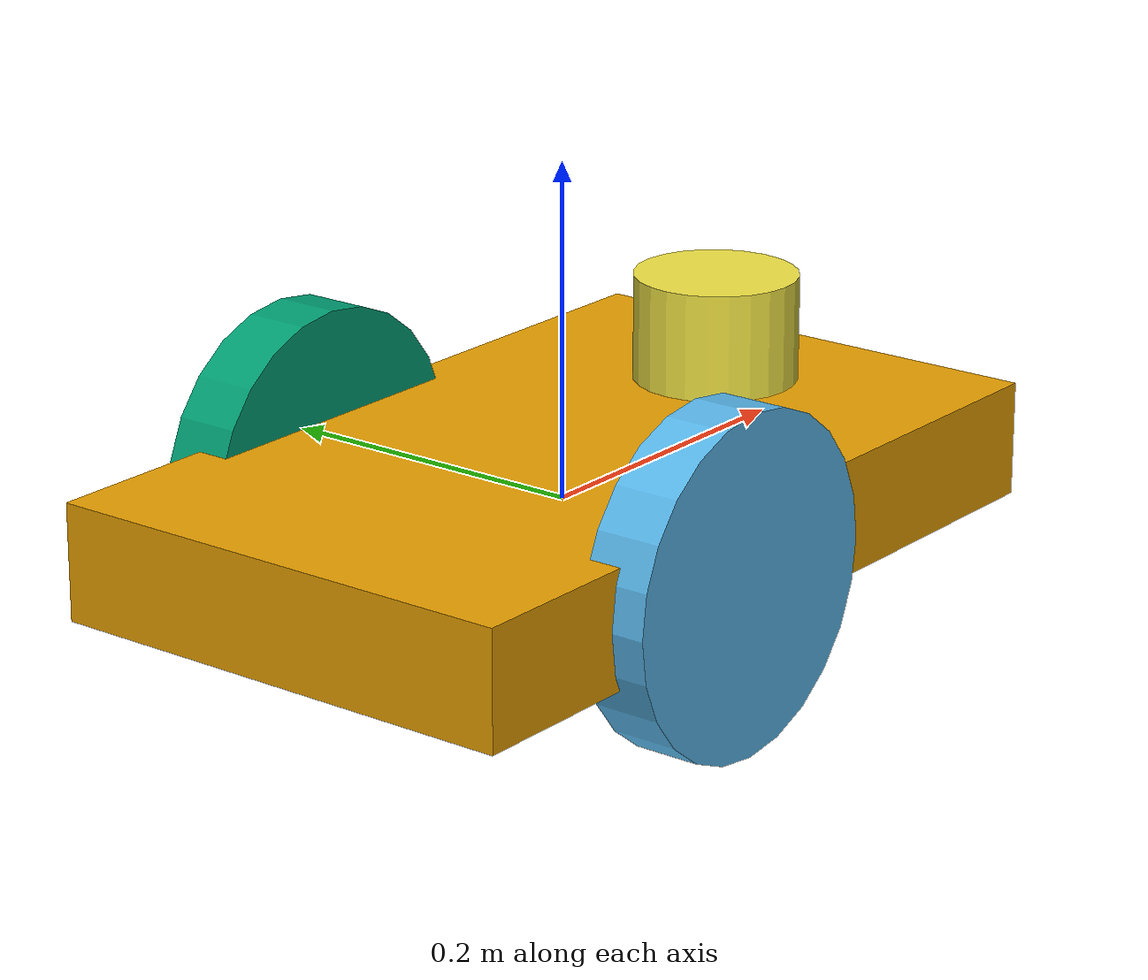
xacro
<?xml version="1.0" ?>
<robot name="sample_robot" xmlns:xacro="http://www.ros.org/wiki/xacro">

  <xacro:include filename="$(find gazebo_example)/urdf/sample_robot.gazebo"/>

  <!-- Robot wheel power source via ROS topic-->
  <gazebo>
    <plugin filename="libgazebo_ros_diff_drive.so" name="differential_drive_controller">
      <legacyMode>true</legacyMode>
      <alwaysOn>true</alwaysOn>
      <updateRate>20</updateRate>
      <leftJoint>joint_left_wheel</leftJoint>
      <rightJoint>joint_right_wheel</rightJoint>
      <wheelSeparation>0.3</wheelSeparation>
      <wheelDiameter>0.2</wheelDiameter>
      <torque>0.1</torque>
      <commandTopic>cmd_vel</commandTopic>
      <odometryTopic>odom</odometryTopic>
      <odometryFrame>odom</odometryFrame>
      <robotBaseFrame>link_chassis</robotBaseFrame>
    </plugin>
  </gazebo>

  <!-- Robot model define -->
  <link name="link_chassis">
    <!-- pose and inertial -->
    <pose>0 0 0.1 0 0 0</pose>
    <inertial>
      <mass value="5"/>
      <origin rpy="0 0 0" xyz="0 0 0"/>
      <inertia
      ixx="0.0395416666667"
      ixy="0"
      ixz="0"
      iyy="0.106208333333"
      iyz="0"
      izz="0.106208333333"
      />
    </inertial>
    <collision name="collision_chassis">
      <geometry>
        <box size="0.5 0.3 0.07"/>
      </geometry>
    </collision>
    <visual>
      <origin rpy="0 0 0" xyz="0 0 0"/>
      <geometry>
        <box size="0.5 0.3 0.07"/>
      </geometry>
    </visual>

    <!--Front sphere wheel-->
    <collision name="caster_front_collision">
      <origin rpy=" 0 0 0" xyz="0.35 0 -0.05"/>
      <geometry>
        <sphere radius="0.05"/>
      </geometry>
      <surface>
        <friction>
          <ode>
            <mu>0</mu>
            <mu2>0</mu2>
            <slip1>1.0</slip1>
            <slip2>1.0</slip2>
          </ode>
        </friction>
      </surface>
    </collision>
    <visual name="caster_front_visual">
      <origin rpy=" 0 0 0" xyz="0.2 0 -0.05"/>
      <geometry>
        <sphere radius="0.05"/>
      </geometry>
    </visual>
  </link>

  <!--Left wheel, joint-->
  <link name="link_left_wheel">
    <inertial>
      <mass value="0.2"/>
      <origin rpy="0 1.5707 1.5707" xyz="0 0 0"/>
      <inertia ixx="0.000526666666667" ixy="0" ixz="0" iyy="0.000526666666667" iyz="0" izz="0.001"/>
    </inertial>
    <collision name="link_right_wheel_collision">
      <origin rpy="0 1.5707 1.5707" xyz="0 0 0"/>
      <geometry>
        <cylinder length="0.04" radius="0.1"/>
      </geometry>
    </collision>
    <visual name="link_left_wheel_visual">
      <origin rpy="0 1.5707 1.5707" xyz="0 0 0"/>
      <geometry>
        <cylinder length="0.04" radius="0.1"/>
      </geometry>
    </visual>
  </link>
  <joint name="joint_left_wheel" type="continuous">
    <origin rpy="0 0 0" xyz="-0.05 -0.15 0"/>
    <child link="link_left_wheel"/>
    <parent link="link_chassis"/>
    <axis rpy="0 0 0" xyz="0 1 0"/>
    <limit effort="10000" velocity="1000"/>
    <joint_properties damping="1.0" friction="1.0"/>
  </joint>

  <!--Right wheel, joint-->
  <link name="link_right_wheel">
    <inertial>
      <mass value="0.2"/>
      <origin rpy="0 1.5707 1.5707" xyz="0 0 0"/>
      <inertia ixx="0.000526666666667" ixy="0" ixz="0" iyy="0.000526666666667" iyz="0" izz="0.001"/>
    </inertial>
    <collision name="link_right_wheel_collision">
      <origin rpy="0 1.5707 1.5707" xyz="0 0 0"/>
      <geometry>
        <cylinder length="0.04" radius="0.1"/>
      </geometry>
    </collision>
    <visual name="link_right_wheel_visual">
      <origin rpy="0 1.5707 1.5707" xyz="0 0 0"/>
      <geometry>
        <cylinder length="0.04" radius="0.1"/>
      </geometry>
    </visual>
  </link>
  <joint name="joint_right_wheel" type="continuous">
    <origin rpy="0 0 0" xyz="-0.05 0.15 0"/>
    <child link="link_right_wheel"/>
    <parent link="link_chassis"/>
    <axis rpy="0 0 0" xyz="0 1 0"/>
    <limit effort="10000" velocity="1000"/>
    <joint_properties damping="1.0" friction="1.0"/>
  </joint>

  <!-- 2D LiDAR Model define -->
  <link name="sensor_laser">
    <inertial>
      <origin xyz="0 0 0" rpy="0 0 0" />
      <mass value="1" />
      <inertia  ixx="0.00895" ixy = "0" ixz = "0"
                iyy="0.00895" iyz = "0"
                izz="0.00125" />
    </inertial>
    <visual>
      <origin xyz="0 0 0" rpy="0 0 0" />
      <geometry>
        <cylinder length="0.1" radius="0.05"/>
      </geometry>
    </visual>
    <collision>
      <origin xyz="0 0 0" rpy="0 0 0"/>
      <geometry>
        <cylinder radius="0.05" length="0.1"/>
      </geometry>
    </collision>
  </link>

  <joint name="joint_sensor_laser" type="fixed">
    <origin xyz="0.15 0 0.05" rpy="0 0 0"/>
    <parent link="link_chassis"/>
    <child link="sensor_laser"/>
  </joint>

  <!-- Camera Model define -->
  <link name="sensor_camera">
    <inertial>
      <origin xyz="0 0 0" rpy="0 0 0" />
      <mass value="1" />
      <inertia  ixx="0.00895" ixy = "0" ixz = "0"
                iyy="0.00895" iyz = "0"
                izz="0.00125" />
      </inertial>
    <visual>
      <origin xyz="0 0 0" rpy="0 0 0" />
      <geometry>
        <box size="0.02 0.2 0.03"/>
      </geometry>
    </visual>
    <collision>
      <origin xyz="0 0 0" rpy="0 0 0" />
      <geometry>
        <box size="0.02 0.2 0.03"/>
      </geometry>
    </collision>
  </link>

  <joint name="joint_sensor_camera" type="fixed">
    <origin xyz="0.25 0 0" rpy="0 0 0"/>
    <parent link="link_chassis"/>
    <child link="sensor_camera"/>
  </joint>
</robot>
